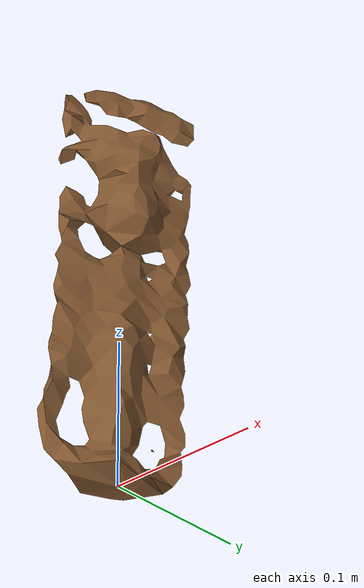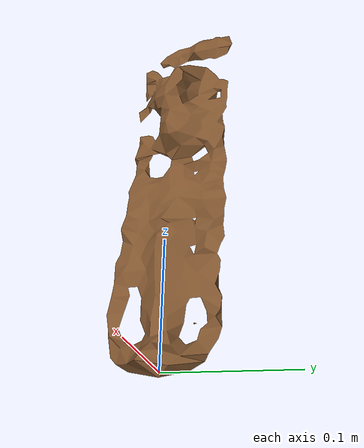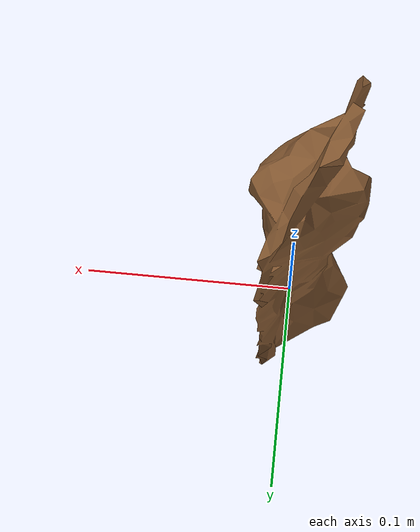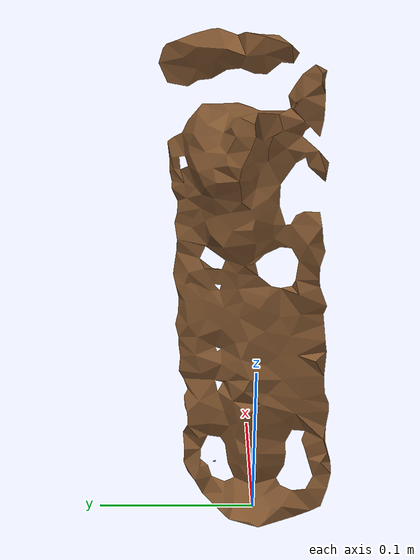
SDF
<?xml version="1.0" ?>
<sdf version="1.4">
  <model name="dr_browns_bottle_brush">
    <link name="dr_browns_bottle_brush_link">
      <inertial>
        <pose>0 0 0 0 0 0</pose>
        <mass>0.08</mass>
      </inertial>

      <visual name="dr_browns_bottle_brush_visual">
        <pose>0 0 0 0 0 0</pose>
        <material>
          <script>
            <uri>model://dr_browns_bottle_brush/materials/scripts</uri>
            <uri>model://dr_browns_bottle_brush/materials/textures</uri>
            <name>dr_browns_bottle_brush</name>
          </script>
        </material>
        <geometry>
          <mesh>
            <uri>model://dr_browns_bottle_brush/meshes/dr_browns_bottle_brush.dae</uri>
          </mesh>
        </geometry>
      </visual>

      <collision name="dr_browns_bottle_brush_collision">
        <pose>0 0 0 0 0 0</pose>
        <geometry>
          <mesh>
            <uri>model://dr_browns_bottle_brush/meshes/dr_browns_bottle_brush.dae</uri>
          </mesh>
        </geometry>
        <surface>
          <friction>
            <ode>
              <mu>0.8</mu>
              <mu2>0.8</mu2>
            </ode>
          </friction>
        </surface>
      </collision>

    </link>
  </model>
</sdf>
